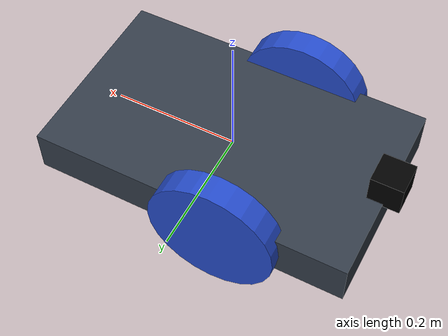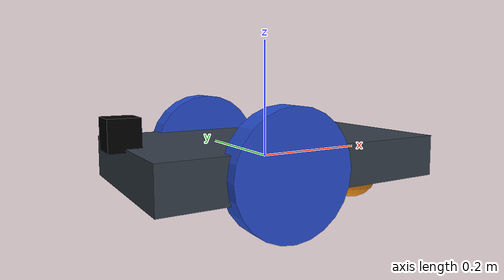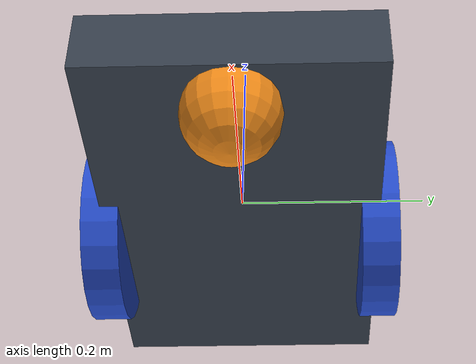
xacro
<?xml version="1.0" ?>

<robot name="m2wr" xmlns:xacro="https://www.ros.org/wiki/xacro" >

  <material name="black">
    <color rgba="0.0 0.0 0.0 1.0"/>
  </material>
  <material name="blue">
    <color rgba="0.203125 0.23828125 0.28515625 1.0"/>
  </material>
  <material name="green">
    <color rgba="0.0 0.8 0.0 1.0"/>
  </material>
  <material name="grey">
    <color rgba="0.2 0.2 0.2 1.0"/>
  </material>
  <material name="orange">
    <color rgba="1.0 0.423529411765 0.0392156862745 1.0"/>
  </material>
  <material name="brown">
    <color rgba="0.870588235294 0.811764705882 0.764705882353 1.0"/>
  </material>
  <material name="red">
    <color rgba="0.80078125 0.12890625 0.1328125 1.0"/>
  </material>
  <material name="white">
    <color rgba="1.0 1.0 1.0 1.0"/>
  </material>

  <gazebo reference="link_chassis">
    <material>Gazebo/Orange</material>
  </gazebo>
  <gazebo reference="link_left_wheel">
    <material>Gazebo/Blue</material>
  </gazebo>
  <gazebo reference="link_right_wheel">
    <material>Gazebo/Blue</material>
  </gazebo>

  <link name="link_chassis">
    <!-- pose and inertial -->
    <pose>0 0 0.1 0 0 0</pose>

    <inertial>
      <mass value="5"/>
      <origin rpy="0 0 0" xyz="0 0 0.1"/>
      <inertia ixx="0.0395416666667" ixy="0" ixz="0" iyy="0.106208333333" iyz="0" izz="0.106208333333"/>
    </inertial>

    <collision name="collision_chassis">
      <geometry>
        <box size="0.5 0.3 0.07"/>
      </geometry>
    </collision>

    <visual>
      <origin rpy="0 0 0" xyz="0 0 0"/>
      <geometry>
        <box size="0.5 0.3 0.07"/>
      </geometry>
      <material name="blue"/>
    </visual>

    <!-- caster front -->
    <collision name="caster_front_collision">
      <origin rpy=" 0 0 0" xyz="0.2 0 -0.05"/>
      <geometry>
        <sphere radius="0.05"/>
      </geometry>
      <surface>
        <friction>
          <ode>
            <mu>0</mu>
            <mu2>0</mu2>
            <slip1>1.0</slip1>
            <slip2>1.0</slip2>
          </ode>
        </friction>
      </surface>
    </collision>
    <visual name="caster_front_visual">
      <origin rpy=" 0 0 0" xyz="0.2 0 -0.05"/>
      <geometry>
        <sphere radius="0.05"/>
      </geometry>
    </visual>
    </link>

  <!-- Create wheel right -->

  <link name="link_right_wheel">
    <inertial>
      <mass value="0.2"/>
      <origin rpy="0 1.5707 1.5707" xyz="0 0 0"/>
      <inertia ixx="0.00052666666" ixy="0" ixz="0" iyy="0.00052666666" iyz="0" izz="0.001"/>
    </inertial>

    <collision name="link_right_wheel_collision">
      <origin rpy="0 1.5707 1.5707" xyz="0 0 0" />
      <geometry>
        <cylinder length="0.04" radius="0.1"/>
      </geometry>
    </collision>

    <visual name="link_right_wheel_visual">
      <origin rpy="0 1.5707 1.5707" xyz="0 0 0"/>
      <geometry>
        <cylinder length="0.04" radius="0.1"/>
      </geometry>
    </visual>

  </link>

  <!--   Joint for right wheel  -->
  <joint name="joint_right_wheel" type="continuous">
    <origin rpy="0 0 0" xyz="-0.05 0.15 0"/>
    <child link="link_right_wheel" />
    <parent link="link_chassis"/>
    <axis rpy="0 0 0" xyz="0 1 0"/>
    <limit effort="10000" velocity="1000"/>
    <joint_properties damping="1.0" friction="1.0" />
  </joint>

  <!-- Left Wheel link -->

  <link name="link_left_wheel">
    <inertial>
      <mass value="0.2"/>
      <origin rpy="0 1.5707 1.5707" xyz="0 0 0"/>
      <inertia ixx="0.00052666666" ixy="0" ixz="0" iyy="0.00052666666" iyz="0" izz="0.001"/>
    </inertial>

    <collision name="link_left_wheel_collision">
      <origin rpy="0 1.5707 1.5707" xyz="0 0 0" />
      <geometry>
        <cylinder length="0.04" radius="0.1"/>
      </geometry>
    </collision>

    <visual name="link_left_wheel_visual">
      <origin rpy="0 1.5707 1.5707" xyz="0 0 0"/>
      <geometry>
        <cylinder length="0.04" radius="0.1"/>
      </geometry>
    </visual>

  </link>

  <!--   Joint for left wheel  -->
  <joint name="joint_left_wheel" type="continuous">
    <origin rpy="0 0 0" xyz="-0.05 -0.15 0"/>
    <child link="link_left_wheel" />
    <parent link="link_chassis"/>
    <axis rpy="0 0 0" xyz="0 1 0"/>
    <limit effort="10000" velocity="1000"/>
    <joint_properties damping="1.0" friction="1.0" />
  </joint>

  <link name="camera">
    <collision>
      <geometry>
        <box size="0.05 0.05 0.05"/>
      </geometry>
    </collision>
    <visual>
      <geometry>
        <box size="0.05 0.05 0.05"/>
      </geometry>
      <material name="black"/>
    </visual>
    <inertial>
      <mass value= "0.5" />
      <origin xyz="0 0 0" rpy="0 0 0" />
      <inertia ixx="1e-6" ixy="0" ixz="0" iyy="1e-6" iyz="0" izz="1e-6" />
    </inertial>
  </link>

  <!--   Joint for camera  -->
  <joint name="camera_joint" type="fixed">
    <axis xyz="0 0 0" />
    <origin xyz="-0.25 0 0.055" rpy="0 0 0"/>
    <parent link="link_chassis"/>
    <child link="camera"/>
  </joint>

  <gazebo>
	  <plugin name="differential_drive_controller" filename="libgazebo_ros_diff_drive.so">

        <!-- Plugin update rate in Hz -->
        <updateRate>100</updateRate>

        <!-- Name of left joint, defaults to `left_joint` -->
        <leftJoint>joint_left_wheel</leftJoint>

        <!-- Name of right joint, defaults to `right_joint` -->
        <rightJoint>joint_right_wheel</rightJoint>

        <!-- The distance from the center of one wheel to the other, in meters, defaults to 0.34 m -->
        <wheelSeparation>0.525</wheelSeparation>

        <!-- Diameter of the wheels, in meters, defaults to 0.15 m -->
        <wheelDiameter>0.2</wheelDiameter>

        <!-- Wheel acceleration, in rad/s^2, defaults to 0.0 rad/s^2 -->
        <wheelAcceleration>1.0</wheelAcceleration>

        <!-- Maximum torque which the wheels can produce, in Nm, defaults to 5 Nm -->
        <wheelTorque>5</wheelTorque>

        <!-- Topic to receive geometry_msgs/Twist message commands, defaults to `cmd_vel` -->
        <commandTopic>cmd_vel</commandTopic>

        <!-- Topic to publish nav_msgs/Odometry messages, defaults to `odom` -->
        <odometryTopic>odom</odometryTopic>

        <!-- Odometry frame, defaults to `odom` -->
        <odometryFrame>odom</odometryFrame>

        <!-- Robot frame to calculate odometry from, defaults to `base_footprint` -->
        <robotBaseFrame>link_0</robotBaseFrame>

        <!-- Odometry source, 0 for ENCODER, 1 for WORLD, defaults to WORLD -->
        <odometrySource>1</odometrySource>

        <!-- Set to true to publish transforms for the wheel links, defaults to false -->
        <publishWheelTF>true</publishWheelTF>

        <!-- Set to true to publish transforms for the odometry, defaults to true -->
        <publishOdom>true</publishOdom>
       <!-- Set to true to publish sensor_msgs/JointState on /joint_states for the wheel joints, defaults to false -->
        <publishWheelJointState>true</publishWheelJointState>

        <!-- Set to true to swap right and left wheels, defaults to true -->
	<legacyMode>false</legacyMode>
	</plugin>
    </gazebo>
    <gazebo reference="camera">
    <sensor type="camera" name="camera1">
      <update_rate>30.0</update_rate>
      <camera name="head">
        <horizontal_fov>1.3962634</horizontal_fov>
        <image>
          <width>800</width>
          <height>800</height>
          <format>R8G8B8</format>
        </image>
        <clip>
          <near>0.02</near>
          <far>300</far>
        </clip>
      </camera>
      <plugin name="camera_controller" filename="libgazebo_ros_camera.so">
        <alwaysOn>true</alwaysOn>
        <updateRate>0.0</updateRate>
        <cameraName>mybot/camera1</cameraName>
        <imageTopicName>image_raw</imageTopicName>
        <cameraInfoTopicName>camera_info</cameraInfoTopicName>
        <frameName>camera</frameName>
        <hackBaseline>0.07</hackBaseline>
        <distortionK1>0.0</distortionK1>
        <distortionK2>0.0</distortionK2>
        <distortionK3>0.0</distortionK3>
        <distortionT1>0.0</distortionT1>
        <distortionT2>0.0</distortionT2>
      </plugin>
    </sensor>
  </gazebo>
</robot>
